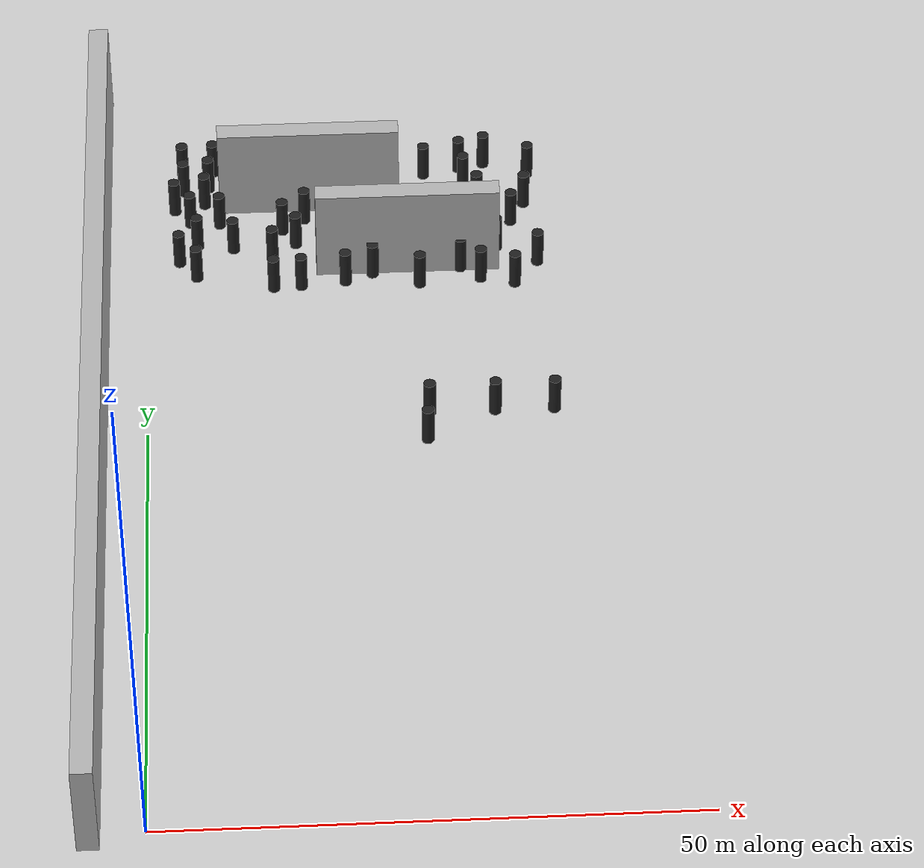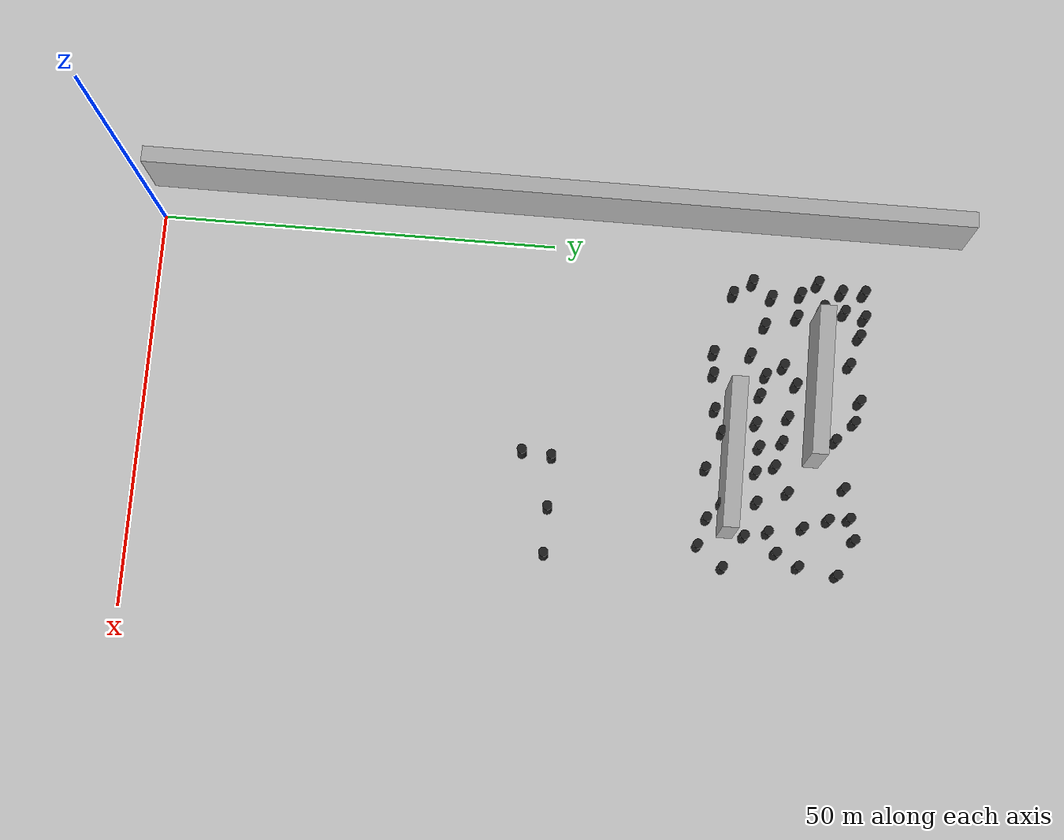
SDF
<sdf version="1.7">
 <world name="default">
  <model name="ground_plane">
   <pose>20 20 0 0 -0 0</pose>
   <static>1</static>
   <link name="link">
    <collision name="collision">
     <geometry><plane><normal>0 0 1</normal><size>200 200</size></plane></geometry>
     <surface><friction><ode><mu>100</mu><mu2>50</mu2></ode></friction></surface>
    </collision>
    <visual name="visual">
     <cast_shadows>0</cast_shadows>
     <geometry><plane><normal>0 0 1</normal><size>200 200</size></plane></geometry>
     <material>
      <script><uri>file://media/materials/scripts/gazebo.material</uri><name>Gazebo/Grey</name></script>
     </material>
    </visual>
   </link>
  </model>
  <model name="pillar_top_area_2">
   <static>1</static>
   <pose>31.0968 77.4059 0 0 -0 0</pose>
   <link name="link">
    <pose>0 0 2 0 -0 0</pose>
    <inertial>
     <mass>1</mass>
     <inertia><ixx>0.083</ixx><ixy>0</ixy><ixz>0</ixz><iyy>0.083</iyy><iyz>0</iyz><izz>0.083</izz></inertia>
    </inertial>
    <collision name="collision">
     <geometry><cylinder><radius>0.6</radius><length>4</length></cylinder></geometry>
    </collision>
    <visual name="visual">
     <geometry><cylinder><radius>0.6</radius><length>4</length></cylinder></geometry>
     <material>
      <script><uri>file://media/materials/scripts/gazebo.material</uri><name>Gazebo/Black</name></script>
     </material>
    </visual>
   </link>
  </model>
  <model name="pillar_top_area_9">
   <static>1</static>
   <pose>4.24913 81.3534 0 0 -0 0</pose>
   <link name="link">
    <pose>0 0 2 0 -0 0</pose>
    <inertial>
     <mass>1</mass>
     <inertia><ixx>0.083</ixx><ixy>0</ixy><ixz>0</ixz><iyy>0.083</iyy><iyz>0</iyz><izz>0.083</izz></inertia>
    </inertial>
    <collision name="collision">
     <geometry><cylinder><radius>0.6</radius><length>4</length></cylinder></geometry>
    </collision>
    <visual name="visual">
     <geometry><cylinder><radius>0.6</radius><length>4</length></cylinder></geometry>
     <material>
      <script><uri>file://media/materials/scripts/gazebo.material</uri><name>Gazebo/Black</name></script>
     </material>
    </visual>
   </link>
  </model>
  <model name="pillar_top_area_13">
   <static>1</static>
   <pose>34.863 89.6063 0 0 -0 0</pose>
   <link name="link">
    <pose>0 0 2 0 -0 0</pose>
    <inertial>
     <mass>1</mass>
     <inertia><ixx>0.083</ixx><ixy>0</ixy><ixz>0</ixz><iyy>0.083</iyy><iyz>0</iyz><izz>0.083</izz></inertia>
    </inertial>
    <collision name="collision">
     <geometry><cylinder><radius>0.6</radius><length>4</length></cylinder></geometry>
    </collision>
    <visual name="visual">
     <geometry><cylinder><radius>0.6</radius><length>4</length></cylinder></geometry>
     <material>
      <script><uri>file://media/materials/scripts/gazebo.material</uri><name>Gazebo/Black</name></script>
     </material>
    </visual>
   </link>
  </model>
  <model name="pillar_top_area_14">
   <static>1</static>
   <pose>17.2846 85.0993 0 0 -0 0</pose>
   <link name="link">
    <pose>0 0 2 0 -0 0</pose>
    <inertial>
     <mass>1</mass>
     <inertia><ixx>0.083</ixx><ixy>0</ixy><ixz>0</ixz><iyy>0.083</iyy><iyz>0</iyz><izz>0.083</izz></inertia>
    </inertial>
    <collision name="collision">
     <geometry><cylinder><radius>0.6</radius><length>4</length></cylinder></geometry>
    </collision>
    <visual name="visual">
     <geometry><cylinder><radius>0.6</radius><length>4</length></cylinder></geometry>
     <material>
      <script><uri>file://media/materials/scripts/gazebo.material</uri><name>Gazebo/Black</name></script>
     </material>
    </visual>
   </link>
  </model>
  <model name="pillar_top_area_18">
   <static>1</static>
   <pose>9.11879 89.0053 0 0 -0 0</pose>
   <link name="link">
    <pose>0 0 2 0 -0 0</pose>
    <inertial>
     <mass>1</mass>
     <inertia><ixx>0.083</ixx><ixy>0</ixy><ixz>0</ixz><iyy>0.083</iyy><iyz>0</iyz><izz>0.083</izz></inertia>
    </inertial>
    <collision name="collision">
     <geometry><cylinder><radius>0.6</radius><length>4</length></cylinder></geometry>
    </collision>
    <visual name="visual">
     <geometry><cylinder><radius>0.6</radius><length>4</length></cylinder></geometry>
     <material>
      <script><uri>file://media/materials/scripts/gazebo.material</uri><name>Gazebo/Black</name></script>
     </material>
    </visual>
   </link>
  </model>
  <model name="pillar_top_area_20">
   <static>1</static>
   <pose>4.94085 77.7269 0 0 -0 0</pose>
   <link name="link">
    <pose>0 0 2 0 -0 0</pose>
    <inertial>
     <mass>1</mass>
     <inertia><ixx>0.083</ixx><ixy>0</ixy><ixz>0</ixz><iyy>0.083</iyy><iyz>0</iyz><izz>0.083</izz></inertia>
    </inertial>
    <collision name="collision">
     <geometry><cylinder><radius>0.6</radius><length>4</length></cylinder></geometry>
    </collision>
    <visual name="visual">
     <geometry><cylinder><radius>0.6</radius><length>4</length></cylinder></geometry>
     <material>
      <script><uri>file://media/materials/scripts/gazebo.material</uri><name>Gazebo/Black</name></script>
     </material>
    </visual>
   </link>
  </model>
  <model name="pillar_top_area_25">
   <static>1</static>
   <pose>22.5964 86.6954 0 0 -0 0</pose>
   <link name="link">
    <pose>0 0 2 0 -0 0</pose>
    <inertial>
     <mass>1</mass>
     <inertia><ixx>0.083</ixx><ixy>0</ixy><ixz>0</ixz><iyy>0.083</iyy><iyz>0</iyz><izz>0.083</izz></inertia>
    </inertial>
    <collision name="collision">
     <geometry><cylinder><radius>0.6</radius><length>4</length></cylinder></geometry>
    </collision>
    <visual name="visual">
     <geometry><cylinder><radius>0.6</radius><length>4</length></cylinder></geometry>
     <material>
      <script><uri>file://media/materials/scripts/gazebo.material</uri><name>Gazebo/Black</name></script>
     </material>
    </visual>
   </link>
  </model>
  <model name="pillar_top_area_26">
   <static>1</static>
   <pose>37.1575 80.1393 0 0 -0 0</pose>
   <link name="link">
    <pose>0 0 2 0 -0 0</pose>
    <inertial>
     <mass>1</mass>
     <inertia><ixx>0.083</ixx><ixy>0</ixy><ixz>0</ixz><iyy>0.083</iyy><iyz>0</iyz><izz>0.083</izz></inertia>
    </inertial>
    <collision name="collision">
     <geometry><cylinder><radius>0.6</radius><length>4</length></cylinder></geometry>
    </collision>
    <visual name="visual">
     <geometry><cylinder><radius>0.6</radius><length>4</length></cylinder></geometry>
     <material>
      <script><uri>file://media/materials/scripts/gazebo.material</uri><name>Gazebo/Black</name></script>
     </material>
    </visual>
   </link>
  </model>
  <model name="pillar_top_area_27">
   <static>1</static>
   <pose>8.60218 77.1014 0 0 -0 0</pose>
   <link name="link">
    <pose>0 0 2 0 -0 0</pose>
    <inertial>
     <mass>1</mass>
     <inertia><ixx>0.083</ixx><ixy>0</ixy><ixz>0</ixz><iyy>0.083</iyy><iyz>0</iyz><izz>0.083</izz></inertia>
    </inertial>
    <collision name="collision">
     <geometry><cylinder><radius>0.6</radius><length>4</length></cylinder></geometry>
    </collision>
    <visual name="visual">
     <geometry><cylinder><radius>0.6</radius><length>4</length></cylinder></geometry>
     <material>
      <script><uri>file://media/materials/scripts/gazebo.material</uri><name>Gazebo/Black</name></script>
     </material>
    </visual>
   </link>
  </model>
  <model name="pillar_top_area_28">
   <static>1</static>
   <pose>9.5639 84.456 0 0 -0 0</pose>
   <link name="link">
    <pose>0 0 2 0 -0 0</pose>
    <inertial>
     <mass>1</mass>
     <inertia><ixx>0.083</ixx><ixy>0</ixy><ixz>0</ixz><iyy>0.083</iyy><iyz>0</iyz><izz>0.083</izz></inertia>
    </inertial>
    <collision name="collision">
     <geometry><cylinder><radius>0.6</radius><length>4</length></cylinder></geometry>
    </collision>
    <visual name="visual">
     <geometry><cylinder><radius>0.6</radius><length>4</length></cylinder></geometry>
     <material>
      <script><uri>file://media/materials/scripts/gazebo.material</uri><name>Gazebo/Black</name></script>
     </material>
    </visual>
   </link>
  </model>
  <model name="pillar_top_area_35">
   <static>1</static>
   <pose>27.2907 74.453 0 0 -0 0</pose>
   <link name="link">
    <pose>0 0 2 0 -0 0</pose>
    <inertial>
     <mass>1</mass>
     <inertia><ixx>0.083</ixx><ixy>0</ixy><ixz>0</ixz><iyy>0.083</iyy><iyz>0</iyz><izz>0.083</izz></inertia>
    </inertial>
    <collision name="collision">
     <geometry><cylinder><radius>0.6</radius><length>4</length></cylinder></geometry>
    </collision>
    <visual name="visual">
     <geometry><cylinder><radius>0.6</radius><length>4</length></cylinder></geometry>
     <material>
      <script><uri>file://media/materials/scripts/gazebo.material</uri><name>Gazebo/Black</name></script>
     </material>
    </visual>
   </link>
  </model>
  <model name="pillar_top_area_37">
   <static>1</static>
   <pose>27.3645 70.8591 0 0 -0 0</pose>
   <link name="link">
    <pose>0 0 2 0 -0 0</pose>
    <inertial>
     <mass>1</mass>
     <inertia><ixx>0.083</ixx><ixy>0</ixy><ixz>0</ixz><iyy>0.083</iyy><iyz>0</iyz><izz>0.083</izz></inertia>
    </inertial>
    <collision name="collision">
     <geometry><cylinder><radius>0.6</radius><length>4</length></cylinder></geometry>
    </collision>
    <visual name="visual">
     <geometry><cylinder><radius>0.6</radius><length>4</length></cylinder></geometry>
     <material>
      <script><uri>file://media/materials/scripts/gazebo.material</uri><name>Gazebo/Black</name></script>
     </material>
    </visual>
   </link>
  </model>
  <model name="pillar_top_area_38">
   <static>1</static>
   <pose>38.6603 82.9487 0 0 -0 0</pose>
   <link name="link">
    <pose>0 0 2 0 -0 0</pose>
    <inertial>
     <mass>1</mass>
     <inertia><ixx>0.083</ixx><ixy>0</ixy><ixz>0</ixz><iyy>0.083</iyy><iyz>0</iyz><izz>0.083</izz></inertia>
    </inertial>
    <collision name="collision">
     <geometry><cylinder><radius>0.6</radius><length>4</length></cylinder></geometry>
    </collision>
    <visual name="visual">
     <geometry><cylinder><radius>0.6</radius><length>4</length></cylinder></geometry>
     <material>
      <script><uri>file://media/materials/scripts/gazebo.material</uri><name>Gazebo/Black</name></script>
     </material>
    </visual>
   </link>
  </model>
  <model name="pillar_top_area_39">
   <static>1</static>
   <pose>15.9395 81.4476 0 0 -0 0</pose>
   <link name="link">
    <pose>0 0 2 0 -0 0</pose>
    <inertial>
     <mass>1</mass>
     <inertia><ixx>0.083</ixx><ixy>0</ixy><ixz>0</ixz><iyy>0.083</iyy><iyz>0</iyz><izz>0.083</izz></inertia>
    </inertial>
    <collision name="collision">
     <geometry><cylinder><radius>0.6</radius><length>4</length></cylinder></geometry>
    </collision>
    <visual name="visual">
     <geometry><cylinder><radius>0.6</radius><length>4</length></cylinder></geometry>
     <material>
      <script><uri>file://media/materials/scripts/gazebo.material</uri><name>Gazebo/Black</name></script>
     </material>
    </visual>
   </link>
  </model>
  <model name="pillar_top_area_44">
   <static>1</static>
   <pose>3.11041 75.2478 0 0 -0 0</pose>
   <link name="link">
    <pose>0 0 2 0 -0 0</pose>
    <inertial>
     <mass>1</mass>
     <inertia><ixx>0.083</ixx><ixy>0</ixy><ixz>0</ixz><iyy>0.083</iyy><iyz>0</iyz><izz>0.083</izz></inertia>
    </inertial>
    <collision name="collision">
     <geometry><cylinder><radius>0.6</radius><length>4</length></cylinder></geometry>
    </collision>
    <visual name="visual">
     <geometry><cylinder><radius>0.6</radius><length>4</length></cylinder></geometry>
     <material>
      <script><uri>file://media/materials/scripts/gazebo.material</uri><name>Gazebo/Black</name></script>
     </material>
    </visual>
   </link>
  </model>
  <model name="pillar_top_area_47">
   <static>1</static>
   <pose>15.3873 71.0791 0 0 -0 0</pose>
   <link name="link">
    <pose>0 0 2 0 -0 0</pose>
    <inertial>
     <mass>1</mass>
     <inertia><ixx>0.083</ixx><ixy>0</ixy><ixz>0</ixz><iyy>0.083</iyy><iyz>0</iyz><izz>0.083</izz></inertia>
    </inertial>
    <collision name="collision">
     <geometry><cylinder><radius>0.6</radius><length>4</length></cylinder></geometry>
    </collision>
    <visual name="visual">
     <geometry><cylinder><radius>0.6</radius><length>4</length></cylinder></geometry>
     <material>
      <script><uri>file://media/materials/scripts/gazebo.material</uri><name>Gazebo/Black</name></script>
     </material>
    </visual>
   </link>
  </model>
  <model name="pillar_top_area_51">
   <static>1</static>
   <pose>39.3574 87.7394 0 0 -0 0</pose>
   <link name="link">
    <pose>0 0 2 0 -0 0</pose>
    <inertial>
     <mass>1</mass>
     <inertia><ixx>0.083</ixx><ixy>0</ixy><ixz>0</ixz><iyy>0.083</iyy><iyz>0</iyz><izz>0.083</izz></inertia>
    </inertial>
    <collision name="collision">
     <geometry><cylinder><radius>0.6</radius><length>4</length></cylinder></geometry>
    </collision>
    <visual name="visual">
     <geometry><cylinder><radius>0.6</radius><length>4</length></cylinder></geometry>
     <material>
      <script><uri>file://media/materials/scripts/gazebo.material</uri><name>Gazebo/Black</name></script>
     </material>
    </visual>
   </link>
  </model>
  <model name="pillar_top_area_56">
   <static>1</static>
   <pose>36.9668 70.4948 0 0 -0 0</pose>
   <link name="link">
    <pose>0 0 2 0 -0 0</pose>
    <inertial>
     <mass>1</mass>
     <inertia><ixx>0.083</ixx><ixy>0</ixy><ixz>0</ixz><iyy>0.083</iyy><iyz>0</iyz><izz>0.083</izz></inertia>
    </inertial>
    <collision name="collision">
     <geometry><cylinder><radius>0.6</radius><length>4</length></cylinder></geometry>
    </collision>
    <visual name="visual">
     <geometry><cylinder><radius>0.6</radius><length>4</length></cylinder></geometry>
     <material>
      <script><uri>file://media/materials/scripts/gazebo.material</uri><name>Gazebo/Black</name></script>
     </material>
    </visual>
   </link>
  </model>
  <model name="pillar_top_area_65">
   <static>1</static>
   <pose>4.84279 72.878 0 0 -0 0</pose>
   <link name="link">
    <pose>0 0 2 0 -0 0</pose>
    <inertial>
     <mass>1</mass>
     <inertia><ixx>0.083</ixx><ixy>0</ixy><ixz>0</ixz><iyy>0.083</iyy><iyz>0</iyz><izz>0.083</izz></inertia>
    </inertial>
    <collision name="collision">
     <geometry><cylinder><radius>0.6</radius><length>4</length></cylinder></geometry>
    </collision>
    <visual name="visual">
     <geometry><cylinder><radius>0.6</radius><length>4</length></cylinder></geometry>
     <material>
      <script><uri>file://media/materials/scripts/gazebo.material</uri><name>Gazebo/Black</name></script>
     </material>
    </visual>
   </link>
  </model>
  <model name="pillar_top_area_71">
   <static>1</static>
   <pose>19.8633 71.5449 0 0 -0 0</pose>
   <link name="link">
    <pose>0 0 2 0 -0 0</pose>
    <inertial>
     <mass>1</mass>
     <inertia><ixx>0.083</ixx><ixy>0</ixy><ixz>0</ixz><iyy>0.083</iyy><iyz>0</iyz><izz>0.083</izz></inertia>
    </inertial>
    <collision name="collision">
     <geometry><cylinder><radius>0.6</radius><length>4</length></cylinder></geometry>
    </collision>
    <visual name="visual">
     <geometry><cylinder><radius>0.6</radius><length>4</length></cylinder></geometry>
     <material>
      <script><uri>file://media/materials/scripts/gazebo.material</uri><name>Gazebo/Black</name></script>
     </material>
    </visual>
   </link>
  </model>
  <model name="pillar_top_area_72">
   <static>1</static>
   <pose>20.1477 80.6773 0 0 -0 0</pose>
   <link name="link">
    <pose>0 0 2 0 -0 0</pose>
    <inertial>
     <mass>1</mass>
     <inertia><ixx>0.083</ixx><ixy>0</ixy><ixz>0</ixz><iyy>0.083</iyy><iyz>0</iyz><izz>0.083</izz></inertia>
    </inertial>
    <collision name="collision">
     <geometry><cylinder><radius>0.6</radius><length>4</length></cylinder></geometry>
    </collision>
    <visual name="visual">
     <geometry><cylinder><radius>0.6</radius><length>4</length></cylinder></geometry>
     <material>
      <script><uri>file://media/materials/scripts/gazebo.material</uri><name>Gazebo/Black</name></script>
     </material>
    </visual>
   </link>
  </model>
  <model name="pillar_top_area_75">
   <static>1</static>
   <pose>32.2607 88.9344 0 0 -0 0</pose>
   <link name="link">
    <pose>0 0 2 0 -0 0</pose>
    <inertial>
     <mass>1</mass>
     <inertia><ixx>0.083</ixx><ixy>0</ixy><ixz>0</ixz><iyy>0.083</iyy><iyz>0</iyz><izz>0.083</izz></inertia>
    </inertial>
    <collision name="collision">
     <geometry><cylinder><radius>0.6</radius><length>4</length></cylinder></geometry>
    </collision>
    <visual name="visual">
     <geometry><cylinder><radius>0.6</radius><length>4</length></cylinder></geometry>
     <material>
      <script><uri>file://media/materials/scripts/gazebo.material</uri><name>Gazebo/Black</name></script>
     </material>
    </visual>
   </link>
  </model>
  <model name="pillar_top_area_77">
   <static>1</static>
   <pose>14.983 77.6084 0 0 -0 0</pose>
   <link name="link">
    <pose>0 0 2 0 -0 0</pose>
    <inertial>
     <mass>1</mass>
     <inertia><ixx>0.083</ixx><ixy>0</ixy><ixz>0</ixz><iyy>0.083</iyy><iyz>0</iyz><izz>0.083</izz></inertia>
    </inertial>
    <collision name="collision">
     <geometry><cylinder><radius>0.6</radius><length>4</length></cylinder></geometry>
    </collision>
    <visual name="visual">
     <geometry><cylinder><radius>0.6</radius><length>4</length></cylinder></geometry>
     <material>
      <script><uri>file://media/materials/scripts/gazebo.material</uri><name>Gazebo/Black</name></script>
     </material>
    </visual>
   </link>
  </model>
  <model name="pillar_top_area_83">
   <static>1</static>
   <pose>2.64595 83.4359 0 0 -0 0</pose>
   <link name="link">
    <pose>0 0 2 0 -0 0</pose>
    <inertial>
     <mass>1</mass>
     <inertia><ixx>0.083</ixx><ixy>0</ixy><ixz>0</ixz><iyy>0.083</iyy><iyz>0</iyz><izz>0.083</izz></inertia>
    </inertial>
    <collision name="collision">
     <geometry><cylinder><radius>0.6</radius><length>4</length></cylinder></geometry>
    </collision>
    <visual name="visual">
     <geometry><cylinder><radius>0.6</radius><length>4</length></cylinder></geometry>
     <material>
      <script><uri>file://media/materials/scripts/gazebo.material</uri><name>Gazebo/Black</name></script>
     </material>
    </visual>
   </link>
  </model>
  <model name="pillar_top_area_89">
   <static>1</static>
   <pose>28.5412 88.0827 0 0 -0 0</pose>
   <link name="link">
    <pose>0 0 2 0 -0 0</pose>
    <inertial>
     <mass>1</mass>
     <inertia><ixx>0.083</ixx><ixy>0</ixy><ixz>0</ixz><iyy>0.083</iyy><iyz>0</iyz><izz>0.083</izz></inertia>
    </inertial>
    <collision name="collision">
     <geometry><cylinder><radius>0.6</radius><length>4</length></cylinder></geometry>
    </collision>
    <visual name="visual">
     <geometry><cylinder><radius>0.6</radius><length>4</length></cylinder></geometry>
     <material>
      <script><uri>file://media/materials/scripts/gazebo.material</uri><name>Gazebo/Black</name></script>
     </material>
    </visual>
   </link>
  </model>
  <model name="pillar_top_area_100">
   <static>1</static>
   <pose>17.423 89.464 0 0 -0 0</pose>
   <link name="link">
    <pose>0 0 2 0 -0 0</pose>
    <inertial>
     <mass>1</mass>
     <inertia><ixx>0.083</ixx><ixy>0</ixy><ixz>0</ixz><iyy>0.083</iyy><iyz>0</iyz><izz>0.083</izz></inertia>
    </inertial>
    <collision name="collision">
     <geometry><cylinder><radius>0.6</radius><length>4</length></cylinder></geometry>
    </collision>
    <visual name="visual">
     <geometry><cylinder><radius>0.6</radius><length>4</length></cylinder></geometry>
     <material>
      <script><uri>file://media/materials/scripts/gazebo.material</uri><name>Gazebo/Black</name></script>
     </material>
    </visual>
   </link>
  </model>
  <model name="pillar_top_area_107">
   <static>1</static>
   <pose>3.57769 86.466 0 0 -0 0</pose>
   <link name="link">
    <pose>0 0 2 0 -0 0</pose>
    <inertial>
     <mass>1</mass>
     <inertia><ixx>0.083</ixx><ixy>0</ixy><ixz>0</ixz><iyy>0.083</iyy><iyz>0</iyz><izz>0.083</izz></inertia>
    </inertial>
    <collision name="collision">
     <geometry><cylinder><radius>0.6</radius><length>4</length></cylinder></geometry>
    </collision>
    <visual name="visual">
     <geometry><cylinder><radius>0.6</radius><length>4</length></cylinder></geometry>
     <material>
      <script><uri>file://media/materials/scripts/gazebo.material</uri><name>Gazebo/Black</name></script>
     </material>
    </visual>
   </link>
  </model>
  <model name="pillar_top_area_110">
   <static>1</static>
   <pose>20.1667 88.9162 0 0 -0 0</pose>
   <link name="link">
    <pose>0 0 2 0 -0 0</pose>
    <inertial>
     <mass>1</mass>
     <inertia><ixx>0.083</ixx><ixy>0</ixy><ixz>0</ixz><iyy>0.083</iyy><iyz>0</iyz><izz>0.083</izz></inertia>
    </inertial>
    <collision name="collision">
     <geometry><cylinder><radius>0.6</radius><length>4</length></cylinder></geometry>
    </collision>
    <visual name="visual">
     <geometry><cylinder><radius>0.6</radius><length>4</length></cylinder></geometry>
     <material>
      <script><uri>file://media/materials/scripts/gazebo.material</uri><name>Gazebo/Black</name></script>
     </material>
    </visual>
   </link>
  </model>
  <model name="pillar_top_area_118">
   <static>1</static>
   <pose>33.5467 71.4086 0 0 -0 0</pose>
   <link name="link">
    <pose>0 0 2 0 -0 0</pose>
    <inertial>
     <mass>1</mass>
     <inertia><ixx>0.083</ixx><ixy>0</ixy><ixz>0</ixz><iyy>0.083</iyy><iyz>0</iyz><izz>0.083</izz></inertia>
    </inertial>
    <collision name="collision">
     <geometry><cylinder><radius>0.6</radius><length>4</length></cylinder></geometry>
    </collision>
    <visual name="visual">
     <geometry><cylinder><radius>0.6</radius><length>4</length></cylinder></geometry>
     <material>
      <script><uri>file://media/materials/scripts/gazebo.material</uri><name>Gazebo/Black</name></script>
     </material>
    </visual>
   </link>
  </model>
  <model name="pillar_top_area_122">
   <static>1</static>
   <pose>12.5559 75.5681 0 0 -0 0</pose>
   <link name="link">
    <pose>0 0 2 0 -0 0</pose>
    <inertial>
     <mass>1</mass>
     <inertia><ixx>0.083</ixx><ixy>0</ixy><ixz>0</ixz><iyy>0.083</iyy><iyz>0</iyz><izz>0.083</izz></inertia>
    </inertial>
    <collision name="collision">
     <geometry><cylinder><radius>0.6</radius><length>4</length></cylinder></geometry>
    </collision>
    <visual name="visual">
     <geometry><cylinder><radius>0.6</radius><length>4</length></cylinder></geometry>
     <material>
      <script><uri>file://media/materials/scripts/gazebo.material</uri><name>Gazebo/Black</name></script>
     </material>
    </visual>
   </link>
  </model>
  <model name="pillar_top_area_139">
   <static>1</static>
   <pose>21.2151 76.7636 0 0 -0 0</pose>
   <link name="link">
    <pose>0 0 2 0 -0 0</pose>
    <inertial>
     <mass>1</mass>
     <inertia><ixx>0.083</ixx><ixy>0</ixy><ixz>0</ixz><iyy>0.083</iyy><iyz>0</iyz><izz>0.083</izz></inertia>
    </inertial>
    <collision name="collision">
     <geometry><cylinder><radius>0.6</radius><length>4</length></cylinder></geometry>
    </collision>
    <visual name="visual">
     <geometry><cylinder><radius>0.6</radius><length>4</length></cylinder></geometry>
     <material>
      <script><uri>file://media/materials/scripts/gazebo.material</uri><name>Gazebo/Black</name></script>
     </material>
    </visual>
   </link>
  </model>
  <model name="pillar_top_area_140">
   <static>1</static>
   <pose>3.45606 89.3072 0 0 -0 0</pose>
   <link name="link">
    <pose>0 0 2 0 -0 0</pose>
    <inertial>
     <mass>1</mass>
     <inertia><ixx>0.083</ixx><ixy>0</ixy><ixz>0</ixz><iyy>0.083</iyy><iyz>0</iyz><izz>0.083</izz></inertia>
    </inertial>
    <collision name="collision">
     <geometry><cylinder><radius>0.6</radius><length>4</length></cylinder></geometry>
    </collision>
    <visual name="visual">
     <geometry><cylinder><radius>0.6</radius><length>4</length></cylinder></geometry>
     <material>
      <script><uri>file://media/materials/scripts/gazebo.material</uri><name>Gazebo/Black</name></script>
     </material>
    </visual>
   </link>
  </model>
  <model name="pillar_top_area_145">
   <static>1</static>
   <pose>39.4675 73.7162 0 0 -0 0</pose>
   <link name="link">
    <pose>0 0 2 0 -0 0</pose>
    <inertial>
     <mass>1</mass>
     <inertia><ixx>0.083</ixx><ixy>0</ixy><ixz>0</ixz><iyy>0.083</iyy><iyz>0</iyz><izz>0.083</izz></inertia>
    </inertial>
    <collision name="collision">
     <geometry><cylinder><radius>0.6</radius><length>4</length></cylinder></geometry>
    </collision>
    <visual name="visual">
     <geometry><cylinder><radius>0.6</radius><length>4</length></cylinder></geometry>
     <material>
      <script><uri>file://media/materials/scripts/gazebo.material</uri><name>Gazebo/Black</name></script>
     </material>
    </visual>
   </link>
  </model>
  <model name="pillar_top_area_152">
   <static>1</static>
   <pose>12.612 70.9386 0 0 -0 0</pose>
   <link name="link">
    <pose>0 0 2 0 -0 0</pose>
    <inertial>
     <mass>1</mass>
     <inertia><ixx>0.083</ixx><ixy>0</ixy><ixz>0</ixz><iyy>0.083</iyy><iyz>0</iyz><izz>0.083</izz></inertia>
    </inertial>
    <collision name="collision">
     <geometry><cylinder><radius>0.6</radius><length>4</length></cylinder></geometry>
    </collision>
    <visual name="visual">
     <geometry><cylinder><radius>0.6</radius><length>4</length></cylinder></geometry>
     <material>
      <script><uri>file://media/materials/scripts/gazebo.material</uri><name>Gazebo/Black</name></script>
     </material>
    </visual>
   </link>
  </model>
  <model name="pillar_top_area_165">
   <static>1</static>
   <pose>35.3926 76.1109 0 0 -0 0</pose>
   <link name="link">
    <pose>0 0 2 0 -0 0</pose>
    <inertial>
     <mass>1</mass>
     <inertia><ixx>0.083</ixx><ixy>0</ixy><ixz>0</ixz><iyy>0.083</iyy><iyz>0</iyz><izz>0.083</izz></inertia>
    </inertial>
    <collision name="collision">
     <geometry><cylinder><radius>0.6</radius><length>4</length></cylinder></geometry>
    </collision>
    <visual name="visual">
     <geometry><cylinder><radius>0.6</radius><length>4</length></cylinder></geometry>
     <material>
      <script><uri>file://media/materials/scripts/gazebo.material</uri><name>Gazebo/Black</name></script>
     </material>
    </visual>
   </link>
  </model>
  <model name="pillar_top_area_186">
   <static>1</static>
   <pose>27.3689 77.0781 0 0 -0 0</pose>
   <link name="link">
    <pose>0 0 2 0 -0 0</pose>
    <inertial>
     <mass>1</mass>
     <inertia><ixx>0.083</ixx><ixy>0</ixy><ixz>0</ixz><iyy>0.083</iyy><iyz>0</iyz><izz>0.083</izz></inertia>
    </inertial>
    <collision name="collision">
     <geometry><cylinder><radius>0.6</radius><length>4</length></cylinder></geometry>
    </collision>
    <visual name="visual">
     <geometry><cylinder><radius>0.6</radius><length>4</length></cylinder></geometry>
     <material>
      <script><uri>file://media/materials/scripts/gazebo.material</uri><name>Gazebo/Black</name></script>
     </material>
    </visual>
   </link>
  </model>
  <model name="pillar_top_area_187">
   <static>1</static>
   <pose>13.6599 79.7694 0 0 -0 0</pose>
   <link name="link">
    <pose>0 0 2 0 -0 0</pose>
    <inertial>
     <mass>1</mass>
     <inertia><ixx>0.083</ixx><ixy>0</ixy><ixz>0</ixz><iyy>0.083</iyy><iyz>0</iyz><izz>0.083</izz></inertia>
    </inertial>
    <collision name="collision">
     <geometry><cylinder><radius>0.6</radius><length>4</length></cylinder></geometry>
    </collision>
    <visual name="visual">
     <geometry><cylinder><radius>0.6</radius><length>4</length></cylinder></geometry>
     <material>
      <script><uri>file://media/materials/scripts/gazebo.material</uri><name>Gazebo/Black</name></script>
     </material>
    </visual>
   </link>
  </model>
  <model name="pillar_top_area_191">
   <static>1</static>
   <pose>34.6653 79.0094 0 0 -0 0</pose>
   <link name="link">
    <pose>0 0 2 0 -0 0</pose>
    <inertial>
     <mass>1</mass>
     <inertia><ixx>0.083</ixx><ixy>0</ixy><ixz>0</ixz><iyy>0.083</iyy><iyz>0</iyz><izz>0.083</izz></inertia>
    </inertial>
    <collision name="collision">
     <geometry><cylinder><radius>0.6</radius><length>4</length></cylinder></geometry>
    </collision>
    <visual name="visual">
     <geometry><cylinder><radius>0.6</radius><length>4</length></cylinder></geometry>
     <material>
      <script><uri>file://media/materials/scripts/gazebo.material</uri><name>Gazebo/Black</name></script>
     </material>
    </visual>
   </link>
  </model>
  <model name="pillar_top_area_197">
   <static>1</static>
   <pose>12.0939 83.7343 0 0 -0 0</pose>
   <link name="link">
    <pose>0 0 2 0 -0 0</pose>
    <inertial>
     <mass>1</mass>
     <inertia><ixx>0.083</ixx><ixy>0</ixy><ixz>0</ixz><iyy>0.083</iyy><iyz>0</iyz><izz>0.083</izz></inertia>
    </inertial>
    <collision name="collision">
     <geometry><cylinder><radius>0.6</radius><length>4</length></cylinder></geometry>
    </collision>
    <visual name="visual">
     <geometry><cylinder><radius>0.6</radius><length>4</length></cylinder></geometry>
     <material>
      <script><uri>file://media/materials/scripts/gazebo.material</uri><name>Gazebo/Black</name></script>
     </material>
    </visual>
   </link>
  </model>
  <model name="pillar_top_area_207">
   <static>1</static>
   <pose>33.8202 83.2711 0 0 -0 0</pose>
   <link name="link">
    <pose>0 0 2 0 -0 0</pose>
    <inertial>
     <mass>1</mass>
     <inertia><ixx>0.083</ixx><ixy>0</ixy><ixz>0</ixz><iyy>0.083</iyy><iyz>0</iyz><izz>0.083</izz></inertia>
    </inertial>
    <collision name="collision">
     <geometry><cylinder><radius>0.6</radius><length>4</length></cylinder></geometry>
    </collision>
    <visual name="visual">
     <geometry><cylinder><radius>0.6</radius><length>4</length></cylinder></geometry>
     <material>
      <script><uri>file://media/materials/scripts/gazebo.material</uri><name>Gazebo/Black</name></script>
     </material>
    </visual>
   </link>
  </model>
  <model name="pillar_top_area_217">
   <static>1</static>
   <pose>32.5903 86.3391 0 0 -0 0</pose>
   <link name="link">
    <pose>0 0 2 0 -0 0</pose>
    <inertial>
     <mass>1</mass>
     <inertia><ixx>0.083</ixx><ixy>0</ixy><ixz>0</ixz><iyy>0.083</iyy><iyz>0</iyz><izz>0.083</izz></inertia>
    </inertial>
    <collision name="collision">
     <geometry><cylinder><radius>0.6</radius><length>4</length></cylinder></geometry>
    </collision>
    <visual name="visual">
     <geometry><cylinder><radius>0.6</radius><length>4</length></cylinder></geometry>
     <material>
      <script><uri>file://media/materials/scripts/gazebo.material</uri><name>Gazebo/Black</name></script>
     </material>
    </visual>
   </link>
  </model>
  <model name="pillar_top_area_229">
   <static>1</static>
   <pose>5.71134 84.3035 0 0 -0 0</pose>
   <link name="link">
    <pose>0 0 2 0 -0 0</pose>
    <inertial>
     <mass>1</mass>
     <inertia><ixx>0.083</ixx><ixy>0</ixy><ixz>0</ixz><iyy>0.083</iyy><iyz>0</iyz><izz>0.083</izz></inertia>
    </inertial>
    <collision name="collision">
     <geometry><cylinder><radius>0.6</radius><length>4</length></cylinder></geometry>
    </collision>
    <visual name="visual">
     <geometry><cylinder><radius>0.6</radius><length>4</length></cylinder></geometry>
     <material>
      <script><uri>file://media/materials/scripts/gazebo.material</uri><name>Gazebo/Black</name></script>
     </material>
    </visual>
   </link>
  </model>
  <model name="pillar_top_area_240">
   <static>1</static>
   <pose>17.6167 77.0541 0 0 -0 0</pose>
   <link name="link">
    <pose>0 0 2 0 -0 0</pose>
    <inertial>
     <mass>1</mass>
     <inertia><ixx>0.083</ixx><ixy>0</ixy><ixz>0</ixz><iyy>0.083</iyy><iyz>0</iyz><izz>0.083</izz></inertia>
    </inertial>
    <collision name="collision">
     <geometry><cylinder><radius>0.6</radius><length>4</length></cylinder></geometry>
    </collision>
    <visual name="visual">
     <geometry><cylinder><radius>0.6</radius><length>4</length></cylinder></geometry>
     <material>
      <script><uri>file://media/materials/scripts/gazebo.material</uri><name>Gazebo/Black</name></script>
     </material>
    </visual>
   </link>
  </model>
  <model name="pillar_top_area_252">
   <static>1</static>
   <pose>7.23264 81.0699 0 0 -0 0</pose>
   <link name="link">
    <pose>0 0 2 0 -0 0</pose>
    <inertial>
     <mass>1</mass>
     <inertia><ixx>0.083</ixx><ixy>0</ixy><ixz>0</ixz><iyy>0.083</iyy><iyz>0</iyz><izz>0.083</izz></inertia>
    </inertial>
    <collision name="collision">
     <geometry><cylinder><radius>0.6</radius><length>4</length></cylinder></geometry>
    </collision>
    <visual name="visual">
     <geometry><cylinder><radius>0.6</radius><length>4</length></cylinder></geometry>
     <material>
      <script><uri>file://media/materials/scripts/gazebo.material</uri><name>Gazebo/Black</name></script>
     </material>
    </visual>
   </link>
  </model>
  <model name="pillar_top_area_261">
   <static>1</static>
   <pose>26.4288 79.4146 0 0 -0 0</pose>
   <link name="link">
    <pose>0 0 2 0 -0 0</pose>
    <inertial>
     <mass>1</mass>
     <inertia><ixx>0.083</ixx><ixy>0</ixy><ixz>0</ixz><iyy>0.083</iyy><iyz>0</iyz><izz>0.083</izz></inertia>
    </inertial>
    <collision name="collision">
     <geometry><cylinder><radius>0.6</radius><length>4</length></cylinder></geometry>
    </collision>
    <visual name="visual">
     <geometry><cylinder><radius>0.6</radius><length>4</length></cylinder></geometry>
     <material>
      <script><uri>file://media/materials/scripts/gazebo.material</uri><name>Gazebo/Black</name></script>
     </material>
    </visual>
   </link>
  </model>
  <model name="pillar_top_area_271">
   <static>1</static>
   <pose>31.5742 73.1163 0 0 -0 0</pose>
   <link name="link">
    <pose>0 0 2 0 -0 0</pose>
    <inertial>
     <mass>1</mass>
     <inertia><ixx>0.083</ixx><ixy>0</ixy><ixz>0</ixz><iyy>0.083</iyy><iyz>0</iyz><izz>0.083</izz></inertia>
    </inertial>
    <collision name="collision">
     <geometry><cylinder><radius>0.6</radius><length>4</length></cylinder></geometry>
    </collision>
    <visual name="visual">
     <geometry><cylinder><radius>0.6</radius><length>4</length></cylinder></geometry>
     <material>
      <script><uri>file://media/materials/scripts/gazebo.material</uri><name>Gazebo/Black</name></script>
     </material>
    </visual>
   </link>
  </model>
  <model name="pillar_top_area_279">
   <static>1</static>
   <pose>29.6258 81.155 0 0 -0 0</pose>
   <link name="link">
    <pose>0 0 2 0 -0 0</pose>
    <inertial>
     <mass>1</mass>
     <inertia><ixx>0.083</ixx><ixy>0</ixy><ixz>0</ixz><iyy>0.083</iyy><iyz>0</iyz><izz>0.083</izz></inertia>
    </inertial>
    <collision name="collision">
     <geometry><cylinder><radius>0.6</radius><length>4</length></cylinder></geometry>
    </collision>
    <visual name="visual">
     <geometry><cylinder><radius>0.6</radius><length>4</length></cylinder></geometry>
     <material>
      <script><uri>file://media/materials/scripts/gazebo.material</uri><name>Gazebo/Black</name></script>
     </material>
    </visual>
   </link>
  </model>
  <model name="pillar_top_area_280">
   <static>1</static>
   <pose>23.3244 80.1515 0 0 -0 0</pose>
   <link name="link">
    <pose>0 0 2 0 -0 0</pose>
    <inertial>
     <mass>1</mass>
     <inertia><ixx>0.083</ixx><ixy>0</ixy><ixz>0</ixz><iyy>0.083</iyy><iyz>0</iyz><izz>0.083</izz></inertia>
    </inertial>
    <collision name="collision">
     <geometry><cylinder><radius>0.6</radius><length>4</length></cylinder></geometry>
    </collision>
    <visual name="visual">
     <geometry><cylinder><radius>0.6</radius><length>4</length></cylinder></geometry>
     <material>
      <script><uri>file://media/materials/scripts/gazebo.material</uri><name>Gazebo/Black</name></script>
     </material>
    </visual>
   </link>
  </model>
  <model name="pillar_top_area_320">
   <static>1</static>
   <pose>19.1993 74.1074 0 0 -0 0</pose>
   <link name="link">
    <pose>0 0 2 0 -0 0</pose>
    <inertial>
     <mass>1</mass>
     <inertia><ixx>0.083</ixx><ixy>0</ixy><ixz>0</ixz><iyy>0.083</iyy><iyz>0</iyz><izz>0.083</izz></inertia>
    </inertial>
    <collision name="collision">
     <geometry><cylinder><radius>0.6</radius><length>4</length></cylinder></geometry>
    </collision>
    <visual name="visual">
     <geometry><cylinder><radius>0.6</radius><length>4</length></cylinder></geometry>
     <material>
      <script><uri>file://media/materials/scripts/gazebo.material</uri><name>Gazebo/Black</name></script>
     </material>
    </visual>
   </link>
  </model>
  <model name="pillar_top_area_337">
   <static>1</static>
   <pose>24.1628 77.328 0 0 -0 0</pose>
   <link name="link">
    <pose>0 0 2 0 -0 0</pose>
    <inertial>
     <mass>1</mass>
     <inertia><ixx>0.083</ixx><ixy>0</ixy><ixz>0</ixz><iyy>0.083</iyy><iyz>0</iyz><izz>0.083</izz></inertia>
    </inertial>
    <collision name="collision">
     <geometry><cylinder><radius>0.6</radius><length>4</length></cylinder></geometry>
    </collision>
    <visual name="visual">
     <geometry><cylinder><radius>0.6</radius><length>4</length></cylinder></geometry>
     <material>
      <script><uri>file://media/materials/scripts/gazebo.material</uri><name>Gazebo/Black</name></script>
     </material>
    </visual>
   </link>
  </model>
  <model name="pillar_top_area_344">
   <static>1</static>
   <pose>12.8689 87.9505 0 0 -0 0</pose>
   <link name="link">
    <pose>0 0 2 0 -0 0</pose>
    <inertial>
     <mass>1</mass>
     <inertia><ixx>0.083</ixx><ixy>0</ixy><ixz>0</ixz><iyy>0.083</iyy><iyz>0</iyz><izz>0.083</izz></inertia>
    </inertial>
    <collision name="collision">
     <geometry><cylinder><radius>0.6</radius><length>4</length></cylinder></geometry>
    </collision>
    <visual name="visual">
     <geometry><cylinder><radius>0.6</radius><length>4</length></cylinder></geometry>
     <material>
      <script><uri>file://media/materials/scripts/gazebo.material</uri><name>Gazebo/Black</name></script>
     </material>
    </visual>
   </link>
  </model>
  <model name="pillar_top_area_364">
   <static>1</static>
   <pose>6.63028 89.5136 0 0 -0 0</pose>
   <link name="link">
    <pose>0 0 2 0 -0 0</pose>
    <inertial>
     <mass>1</mass>
     <inertia><ixx>0.083</ixx><ixy>0</ixy><ixz>0</ixz><iyy>0.083</iyy><iyz>0</iyz><izz>0.083</izz></inertia>
    </inertial>
    <collision name="collision">
     <geometry><cylinder><radius>0.6</radius><length>4</length></cylinder></geometry>
    </collision>
    <visual name="visual">
     <geometry><cylinder><radius>0.6</radius><length>4</length></cylinder></geometry>
     <material>
      <script><uri>file://media/materials/scripts/gazebo.material</uri><name>Gazebo/Black</name></script>
     </material>
    </visual>
   </link>
  </model>
  <model name="pillar_top_area_390">
   <static>1</static>
   <pose>6.1364 86.9537 0 0 -0 0</pose>
   <link name="link">
    <pose>0 0 2 0 -0 0</pose>
    <inertial>
     <mass>1</mass>
     <inertia><ixx>0.083</ixx><ixy>0</ixy><ixz>0</ixz><iyy>0.083</iyy><iyz>0</iyz><izz>0.083</izz></inertia>
    </inertial>
    <collision name="collision">
     <geometry><cylinder><radius>0.6</radius><length>4</length></cylinder></geometry>
    </collision>
    <visual name="visual">
     <geometry><cylinder><radius>0.6</radius><length>4</length></cylinder></geometry>
     <material>
      <script><uri>file://media/materials/scripts/gazebo.material</uri><name>Gazebo/Black</name></script>
     </material>
    </visual>
   </link>
  </model>
  <model name="pillar_top_area_397">
   <static>1</static>
   <pose>22.6426 72.6312 0 0 -0 0</pose>
   <link name="link">
    <pose>0 0 2 0 -0 0</pose>
    <inertial>
     <mass>1</mass>
     <inertia><ixx>0.083</ixx><ixy>0</ixy><ixz>0</ixz><iyy>0.083</iyy><iyz>0</iyz><izz>0.083</izz></inertia>
    </inertial>
    <collision name="collision">
     <geometry><cylinder><radius>0.6</radius><length>4</length></cylinder></geometry>
    </collision>
    <visual name="visual">
     <geometry><cylinder><radius>0.6</radius><length>4</length></cylinder></geometry>
     <material>
      <script><uri>file://media/materials/scripts/gazebo.material</uri><name>Gazebo/Black</name></script>
     </material>
    </visual>
   </link>
  </model>
  <model name="center_wall_clone_clone_clone">
   <static>1</static>
   <pose>-5 50 5.00499 0 -0 1.5707</pose>
   <link name="link">
    <collision name="collision"><geometry><box><size>103.653 2 10</size></box></geometry></collision>
    <visual name="visual">
     <geometry><box><size>103.653 2 10</size></box></geometry>
     <material>
      <ambient>0.6 0.6 0.6 1</ambient>
      <diffuse>0.7 0.7 0.7 1</diffuse>
      <specular>0.2 0.2 0.2 1</specular>
     </material>
    </visual>
   </link>
  </model>
  <model name="center_wall_clone_0_clone_3">
   <static>1</static>
   <pose>16.5139 84.0146 5.00499 0 -0 0</pose>
   <link name="link">
    <collision name="collision"><geometry><box><size>18.5054 2 10</size></box></geometry></collision>
    <visual name="visual">
     <geometry><box><size>18.5054 2 10</size></box></geometry>
     <material>
      <ambient>0.6 0.6 0.6 1</ambient>
      <diffuse>0.7 0.7 0.7 1</diffuse>
      <specular>0.2 0.2 0.2 1</specular>
     </material>
    </visual>
   </link>
  </model>
  <model name="center_wall_clone_0_clone_4">
   <static>1</static>
   <pose>26.2276 73.8741 5.00499 0 -0 0</pose>
   <link name="link">
    <collision name="collision"><geometry><box><size>18.5054 2 10</size></box></geometry></collision>
    <visual name="visual">
     <geometry><box><size>18.5054 2 10</size></box></geometry>
     <material>
      <ambient>0.6 0.6 0.6 1</ambient>
      <diffuse>0.7 0.7 0.7 1</diffuse>
      <specular>0.2 0.2 0.2 1</specular>
     </material>
    </visual>
   </link>
  </model>
  <model name="pillar_top_area_62_clone">
   <static>1</static>
   <pose>27.372 51.7684 0 0 -0 0</pose>
   <link name="link">
    <pose>0 0 2 0 -0 0</pose>
    <inertial>
     <mass>1</mass>
     <inertia><ixx>0.083</ixx><ixy>0</ixy><ixz>0</ixz><iyy>0.083</iyy><iyz>0</iyz><izz>0.083</izz></inertia>
    </inertial>
    <collision name="collision">
     <geometry><cylinder><radius>0.6</radius><length>4</length></cylinder></geometry>
    </collision>
    <visual name="visual">
     <geometry><cylinder><radius>0.6</radius><length>4</length></cylinder></geometry>
     <material>
      <script><uri>file://media/materials/scripts/gazebo.material</uri><name>Gazebo/Black</name></script>
     </material>
    </visual>
   </link>
  </model>
  <model name="pillar_top_area_62_clone_0">
   <static>1</static>
   <pose>33.7666 51.786 0 0 -0 0</pose>
   <link name="link">
    <pose>0 0 2 0 -0 0</pose>
    <inertial>
     <mass>1</mass>
     <inertia><ixx>0.083</ixx><ixy>0</ixy><ixz>0</ixz><iyy>0.083</iyy><iyz>0</iyz><izz>0.083</izz></inertia>
    </inertial>
    <collision name="collision">
     <geometry><cylinder><radius>0.6</radius><length>4</length></cylinder></geometry>
    </collision>
    <visual name="visual">
     <geometry><cylinder><radius>0.6</radius><length>4</length></cylinder></geometry>
     <material>
      <script><uri>file://media/materials/scripts/gazebo.material</uri><name>Gazebo/Black</name></script>
     </material>
    </visual>
   </link>
  </model>
  <model name="pillar_top_area_62_clone_1">
   <static>1</static>
   <pose>39.5526 51.7788 0 0 -0 0</pose>
   <link name="link">
    <pose>0 0 2 0 -0 0</pose>
    <inertial>
     <mass>1</mass>
     <inertia><ixx>0.083</ixx><ixy>0</ixy><ixz>0</ixz><iyy>0.083</iyy><iyz>0</iyz><izz>0.083</izz></inertia>
    </inertial>
    <collision name="collision">
     <geometry><cylinder><radius>0.6</radius><length>4</length></cylinder></geometry>
    </collision>
    <visual name="visual">
     <geometry><cylinder><radius>0.6</radius><length>4</length></cylinder></geometry>
     <material>
      <script><uri>file://media/materials/scripts/gazebo.material</uri><name>Gazebo/Black</name></script>
     </material>
    </visual>
   </link>
  </model>
  <model name="pillar_top_area_62_clone_8">
   <static>1</static>
   <pose>27.0248 48.0722 0 0 -0 0</pose>
   <link name="link">
    <pose>0 0 2 0 -0 0</pose>
    <inertial>
     <mass>1</mass>
     <inertia><ixx>0.083</ixx><ixy>0</ixy><ixz>0</ixz><iyy>0.083</iyy><iyz>0</iyz><izz>0.083</izz></inertia>
    </inertial>
    <collision name="collision">
     <geometry><cylinder><radius>0.6</radius><length>4</length></cylinder></geometry>
    </collision>
    <visual name="visual">
     <geometry><cylinder><radius>0.6</radius><length>4</length></cylinder></geometry>
     <material>
      <script><uri>file://media/materials/scripts/gazebo.material</uri><name>Gazebo/Black</name></script>
     </material>
    </visual>
   </link>
  </model>
 </world>
</sdf>
